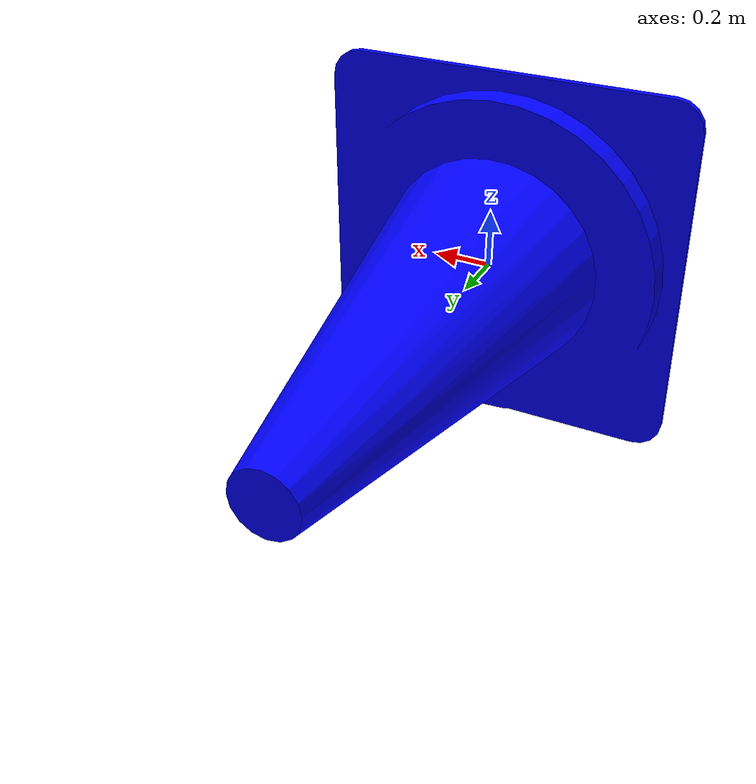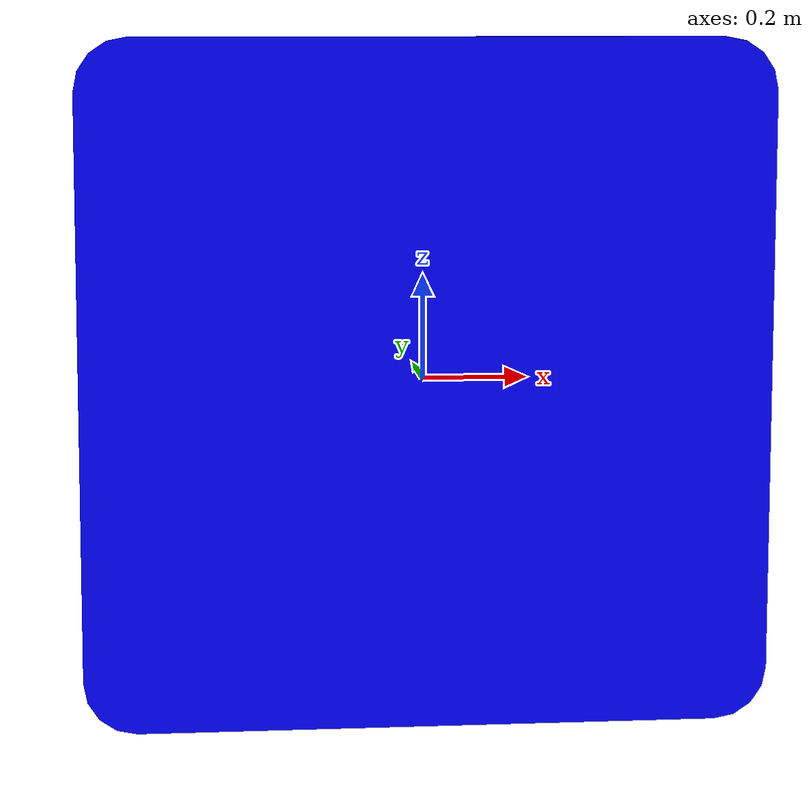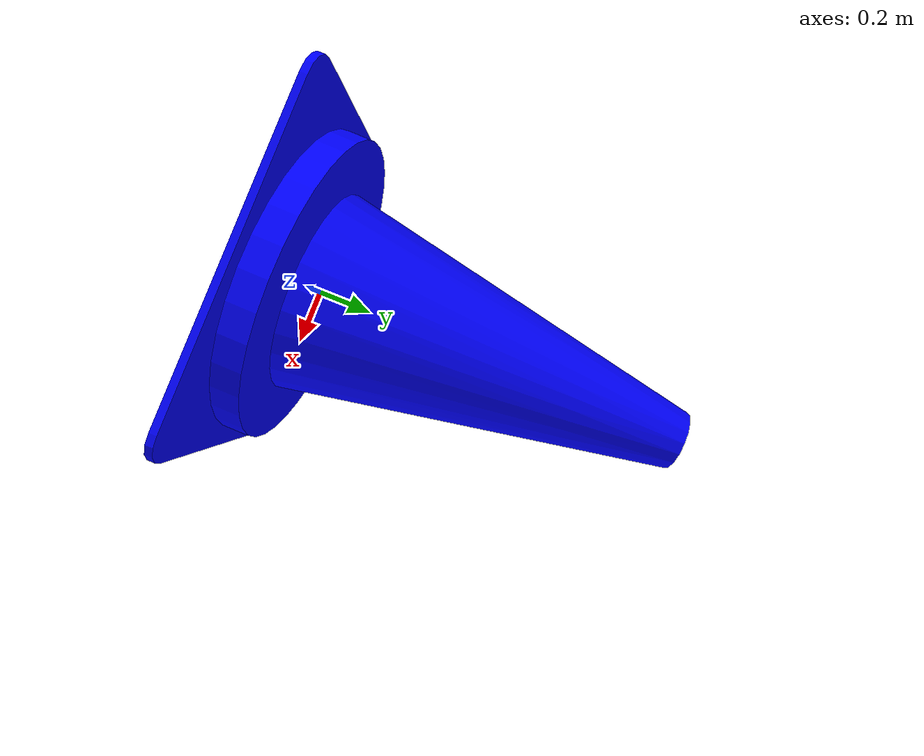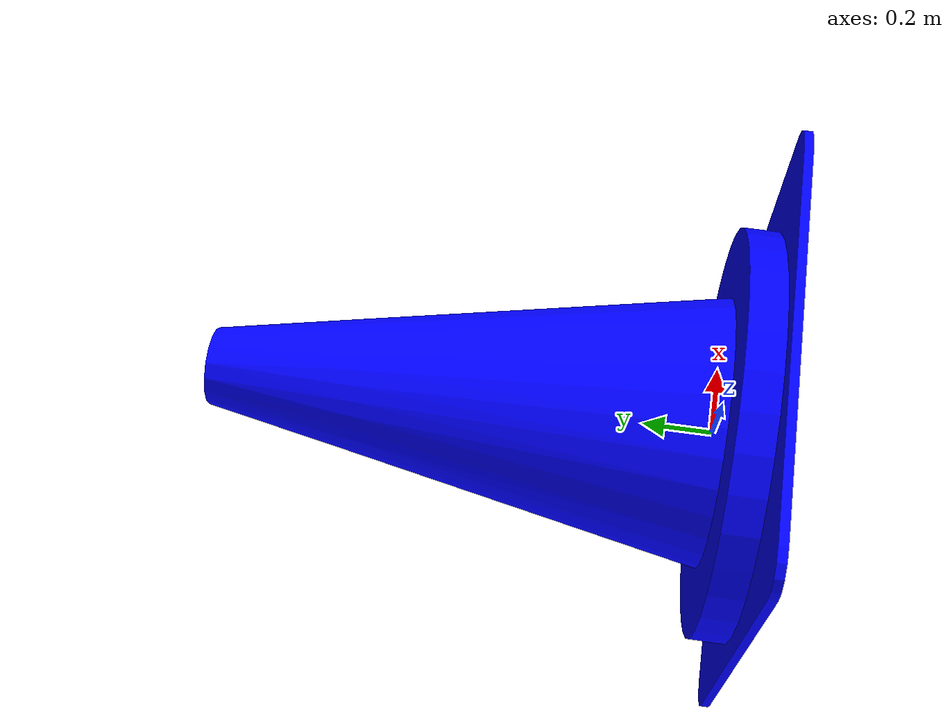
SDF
<?xml version="1.0" ?>
<sdf version="1.6">
  <model name="cone_blue">
    <static>1</static>
    <link name="link">

      <inertial>
        <pose>0 0 0.05 0 0 0</pose> <mass>1</mass>
        <inertia>
          <ixx>0.01</ixx> <iyy>0.01</iyy> <izz>0.005</izz>
          <ixy>0.0</ixy> <ixz>0.0</ixz> <iyz>0.0</iyz>
        </inertia>
      </inertial>

      <collision name="collision">
        <pose>0 0 0.15 0 0 0</pose>
        <geometry>
          <cylinder>
            <radius>0.1</radius>
            <length>0.3</length>
          </cylinder>
        </geometry>
      </collision>

      <visual name="visual">
        <pose>0 0 0 0 0 0</pose>
        <geometry>
          <mesh>
            <uri>model://cone_blue/meshes/cone.stl</uri>
            <scale>0.005 0.005 0.005</scale>
          </mesh>
        </geometry>
        <material>
          <ambient>0.0 0.0 1.0 1</ambient>
          <diffuse>0.0 0.0 1.0 1</diffuse>
        </material>
      </visual>

    </link>
  </model>
</sdf>
